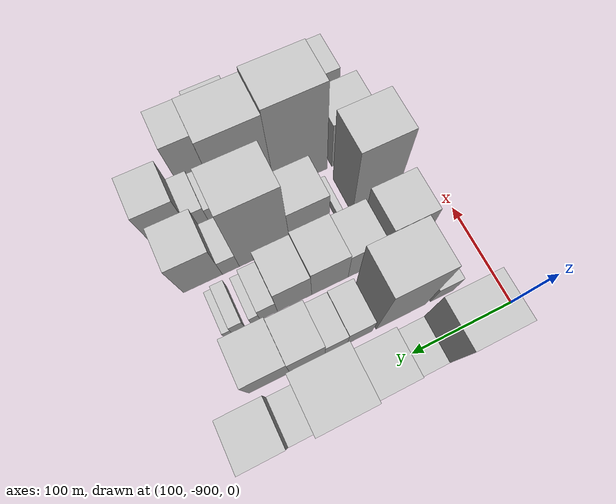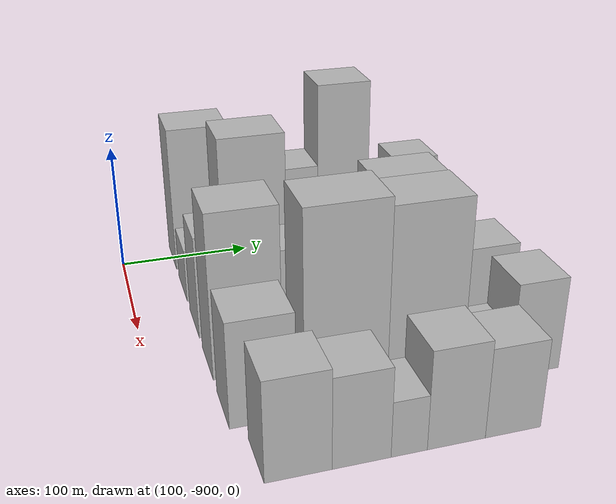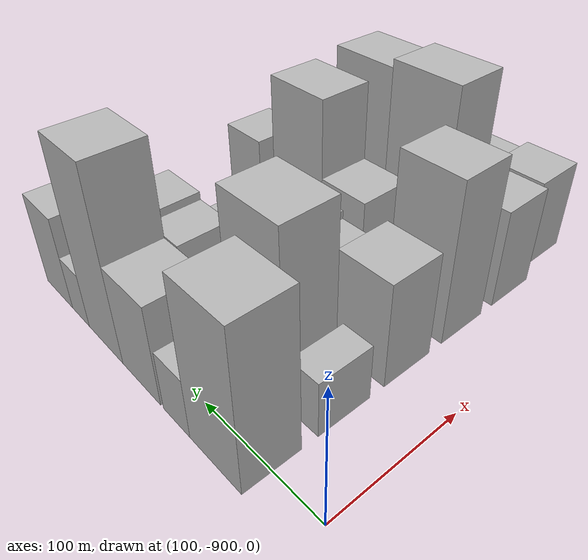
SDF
<sdf version="1.6">
 <world name="default">
  <model name="building_1">
   <static>1</static>
   <pose>100.0000 -836.9546 0 0.000000 0.000000 0.000000</pose>
   <link name="link">
    <pose>0 0 58.50 0 0 0</pose>
    <collision name="collision"><geometry><box><size>40.0000 46.0908 117.0000</size></box></geometry></collision>
    <visual name="visual">
     <cast_shadows>0</cast_shadows>
     <geometry><box><size>40.0000 46.0908 117.0000</size></box></geometry>
     <material>
      <script>
       <uri>model://HANNAS_wall/materials/scripts</uri>
       <uri>model://HANNAS_wall/materials/textures</uri>
       <name>vrc/HANNAS_wall</name>
      </script>
     </material>
    </visual>
   </link>
  </model>
  <model name="building_2">
   <static>1</static>
   <pose>100.0000 -800.7105 0 0.000000 0.000000 0.000000</pose>
   <link name="link">
    <pose>0 0 22.50 0 0 0</pose>
    <collision name="collision"><geometry><box><size>40.0000 26.3974 45.0000</size></box></geometry></collision>
    <visual name="visual">
     <cast_shadows>0</cast_shadows>
     <geometry><box><size>40.0000 26.3974 45.0000</size></box></geometry>
     <material>
      <script>
       <uri>model://HANNAS_wall/materials/scripts</uri>
       <uri>model://HANNAS_wall/materials/textures</uri>
       <name>vrc/HANNAS_wall</name>
      </script>
     </material>
    </visual>
   </link>
  </model>
  <model name="building_3">
   <static>1</static>
   <pose>100.0000 -763.3502 0 0.000000 0.000000 0.000000</pose>
   <link name="link">
    <pose>0 0 37.50 0 0 0</pose>
    <collision name="collision"><geometry><box><size>40.0000 42.3233 75.0000</size></box></geometry></collision>
    <visual name="visual">
     <cast_shadows>0</cast_shadows>
     <geometry><box><size>40.0000 42.3233 75.0000</size></box></geometry>
     <material>
      <script>
       <uri>model://HANNAS_wall/materials/scripts</uri>
       <uri>model://HANNAS_wall/materials/textures</uri>
       <name>vrc/HANNAS_wall</name>
      </script>
     </material>
    </visual>
   </link>
  </model>
  <model name="building_4">
   <static>1</static>
   <pose>100.0000 -720.8452 0 0.000000 0.000000 0.000000</pose>
   <link name="link">
    <pose>0 0 70.50 0 0 0</pose>
    <collision name="collision"><geometry><box><size>40.0000 42.6867 141.0000</size></box></geometry></collision>
    <visual name="visual">
     <cast_shadows>0</cast_shadows>
     <geometry><box><size>40.0000 42.6867 141.0000</size></box></geometry>
     <material>
      <script>
       <uri>model://HANNAS_wall/materials/scripts</uri>
       <uri>model://HANNAS_wall/materials/textures</uri>
       <name>vrc/HANNAS_wall</name>
      </script>
     </material>
    </visual>
   </link>
  </model>
  <model name="building_5">
   <static>1</static>
   <pose>100.0000 -687.9397 0 0.000000 0.000000 0.000000</pose>
   <link name="link">
    <pose>0 0 21.00 0 0 0</pose>
    <collision name="collision"><geometry><box><size>40.0000 23.1242 42.0000</size></box></geometry></collision>
    <visual name="visual">
     <cast_shadows>0</cast_shadows>
     <geometry><box><size>40.0000 23.1242 42.0000</size></box></geometry>
     <material>
      <script>
       <uri>model://HANNAS_wall/materials/scripts</uri>
       <uri>model://HANNAS_wall/materials/textures</uri>
       <name>vrc/HANNAS_wall</name>
      </script>
     </material>
    </visual>
   </link>
  </model>
  <model name="building_6">
   <static>1</static>
   <pose>100.0000 -657.6483 0 0.000000 0.000000 0.000000</pose>
   <link name="link">
    <pose>0 0 36.00 0 0 0</pose>
    <collision name="collision"><geometry><box><size>40.0000 37.4587 72.0000</size></box></geometry></collision>
    <visual name="visual">
     <cast_shadows>0</cast_shadows>
     <geometry><box><size>40.0000 37.4587 72.0000</size></box></geometry>
     <material>
      <script>
       <uri>model://HANNAS_wall/materials/scripts</uri>
       <uri>model://HANNAS_wall/materials/textures</uri>
       <name>vrc/HANNAS_wall</name>
      </script>
     </material>
    </visual>
   </link>
  </model>
  <model name="building_49">
   <static>1</static>
   <pose>152.0000 -848.3407 0 0.000000 0.000000 0.000000</pose>
   <link name="link">
    <pose>0 0 21.00 0 0 0</pose>
    <collision name="collision"><geometry><box><size>40.0000 23.3186 42.0000</size></box></geometry></collision>
    <visual name="visual">
     <cast_shadows>0</cast_shadows>
     <geometry><box><size>40.0000 23.3186 42.0000</size></box></geometry>
     <material>
      <script>
       <uri>model://HANNAS_wall/materials/scripts</uri>
       <uri>model://HANNAS_wall/materials/textures</uri>
       <name>vrc/HANNAS_wall</name>
      </script>
     </material>
    </visual>
   </link>
  </model>
  <model name="building_50">
   <static>1</static>
   <pose>152.0000 -806.9948 0 0.000000 0.000000 0.000000</pose>
   <link name="link">
    <pose>0 0 63.00 0 0 0</pose>
    <collision name="collision"><geometry><box><size>40.0000 49.3733 126.0000</size></box></geometry></collision>
    <visual name="visual">
     <cast_shadows>0</cast_shadows>
     <geometry><box><size>40.0000 49.3733 126.0000</size></box></geometry>
     <material>
      <script>
       <uri>model://HANNAS_wall/materials/scripts</uri>
       <uri>model://HANNAS_wall/materials/textures</uri>
       <name>vrc/HANNAS_wall</name>
      </script>
     </material>
    </visual>
   </link>
  </model>
  <model name="building_51">
   <static>1</static>
   <pose>152.0000 -766.2804 0 0.000000 0.000000 0.000000</pose>
   <link name="link">
    <pose>0 0 22.50 0 0 0</pose>
    <collision name="collision"><geometry><box><size>40.0000 24.0554 45.0000</size></box></geometry></collision>
    <visual name="visual">
     <cast_shadows>0</cast_shadows>
     <geometry><box><size>40.0000 24.0554 45.0000</size></box></geometry>
     <material>
      <script>
       <uri>model://HANNAS_wall/materials/scripts</uri>
       <uri>model://HANNAS_wall/materials/textures</uri>
       <name>vrc/HANNAS_wall</name>
      </script>
     </material>
    </visual>
   </link>
  </model>
  <model name="building_52">
   <static>1</static>
   <pose>152.0000 -743.5735 0 0.000000 0.000000 0.000000</pose>
   <link name="link">
    <pose>0 0 21.00 0 0 0</pose>
    <collision name="collision"><geometry><box><size>40.0000 21.3583 42.0000</size></box></geometry></collision>
    <visual name="visual">
     <cast_shadows>0</cast_shadows>
     <geometry><box><size>40.0000 21.3583 42.0000</size></box></geometry>
     <material>
      <script>
       <uri>model://HANNAS_wall/materials/scripts</uri>
       <uri>model://HANNAS_wall/materials/textures</uri>
       <name>vrc/HANNAS_wall</name>
      </script>
     </material>
    </visual>
   </link>
  </model>
  <model name="building_53">
   <static>1</static>
   <pose>152.0000 -716.4333 0 0.000000 0.000000 0.000000</pose>
   <link name="link">
    <pose>0 0 28.50 0 0 0</pose>
    <collision name="collision"><geometry><box><size>40.0000 32.9222 57.0000</size></box></geometry></collision>
    <visual name="visual">
     <cast_shadows>0</cast_shadows>
     <geometry><box><size>40.0000 32.9222 57.0000</size></box></geometry>
     <material>
      <script>
       <uri>model://HANNAS_wall/materials/scripts</uri>
       <uri>model://HANNAS_wall/materials/textures</uri>
       <name>vrc/HANNAS_wall</name>
      </script>
     </material>
    </visual>
   </link>
  </model>
  <model name="building_54">
   <static>1</static>
   <pose>152.0000 -681.1485 0 0.000000 0.000000 0.000000</pose>
   <link name="link">
    <pose>0 0 31.50 0 0 0</pose>
    <collision name="collision"><geometry><box><size>40.0000 37.6475 63.0000</size></box></geometry></collision>
    <visual name="visual">
     <cast_shadows>0</cast_shadows>
     <geometry><box><size>40.0000 37.6475 63.0000</size></box></geometry>
     <material>
      <script>
       <uri>model://HANNAS_wall/materials/scripts</uri>
       <uri>model://HANNAS_wall/materials/textures</uri>
       <name>vrc/HANNAS_wall</name>
      </script>
     </material>
    </visual>
   </link>
  </model>
  <model name="building_94">
   <static>1</static>
   <pose>204.0000 -839.3285 0 0.000000 0.000000 0.000000</pose>
   <link name="link">
    <pose>0 0 39.00 0 0 0</pose>
    <collision name="collision"><geometry><box><size>40.0000 41.3431 78.0000</size></box></geometry></collision>
    <visual name="visual">
     <cast_shadows>0</cast_shadows>
     <geometry><box><size>40.0000 41.3431 78.0000</size></box></geometry>
     <material>
      <script>
       <uri>model://HANNAS_wall/materials/scripts</uri>
       <uri>model://HANNAS_wall/materials/textures</uri>
       <name>vrc/HANNAS_wall</name>
      </script>
     </material>
    </visual>
   </link>
  </model>
  <model name="building_95">
   <static>1</static>
   <pose>204.0000 -798.7464 0 0.000000 0.000000 0.000000</pose>
   <link name="link">
    <pose>0 0 30.00 0 0 0</pose>
    <collision name="collision"><geometry><box><size>40.0000 33.8210 60.0000</size></box></geometry></collision>
    <visual name="visual">
     <cast_shadows>0</cast_shadows>
     <geometry><box><size>40.0000 33.8210 60.0000</size></box></geometry>
     <material>
      <script>
       <uri>model://HANNAS_wall/materials/scripts</uri>
       <uri>model://HANNAS_wall/materials/textures</uri>
       <name>vrc/HANNAS_wall</name>
      </script>
     </material>
    </visual>
   </link>
  </model>
  <model name="building_96">
   <static>1</static>
   <pose>204.0000 -763.7818 0 0.000000 0.000000 0.000000</pose>
   <link name="link">
    <pose>0 0 33.00 0 0 0</pose>
    <collision name="collision"><geometry><box><size>40.0000 36.1082 66.0000</size></box></geometry></collision>
    <visual name="visual">
     <cast_shadows>0</cast_shadows>
     <geometry><box><size>40.0000 36.1082 66.0000</size></box></geometry>
     <material>
      <script>
       <uri>model://HANNAS_wall/materials/scripts</uri>
       <uri>model://HANNAS_wall/materials/textures</uri>
       <name>vrc/HANNAS_wall</name>
      </script>
     </material>
    </visual>
   </link>
  </model>
  <model name="building_97">
   <static>1</static>
   <pose>204.0000 -729.1029 0 0.000000 0.000000 0.000000</pose>
   <link name="link">
    <pose>0 0 30.00 0 0 0</pose>
    <collision name="collision"><geometry><box><size>40.0000 33.2497 60.0000</size></box></geometry></collision>
    <visual name="visual">
     <cast_shadows>0</cast_shadows>
     <geometry><box><size>40.0000 33.2497 60.0000</size></box></geometry>
     <material>
      <script>
       <uri>model://HANNAS_wall/materials/scripts</uri>
       <uri>model://HANNAS_wall/materials/textures</uri>
       <name>vrc/HANNAS_wall</name>
      </script>
     </material>
    </visual>
   </link>
  </model>
  <model name="building_98">
   <static>1</static>
   <pose>204.0000 -704.1733 0 0.000000 0.000000 0.000000</pose>
   <link name="link">
    <pose>0 0 16.50 0 0 0</pose>
    <collision name="collision"><geometry><box><size>40.0000 16.6094 33.0000</size></box></geometry></collision>
    <visual name="visual">
     <cast_shadows>0</cast_shadows>
     <geometry><box><size>40.0000 16.6094 33.0000</size></box></geometry>
     <material>
      <script>
       <uri>model://HANNAS_wall/materials/scripts</uri>
       <uri>model://HANNAS_wall/materials/textures</uri>
       <name>vrc/HANNAS_wall</name>
      </script>
     </material>
    </visual>
   </link>
  </model>
  <model name="building_99">
   <static>1</static>
   <pose>204.0000 -691.5956 0 0.000000 0.000000 0.000000</pose>
   <link name="link">
    <pose>0 0 10.50 0 0 0</pose>
    <collision name="collision"><geometry><box><size>40.0000 8.5460 21.0000</size></box></geometry></collision>
    <visual name="visual">
     <cast_shadows>0</cast_shadows>
     <geometry><box><size>40.0000 8.5460 21.0000</size></box></geometry>
     <material>
      <script>
       <uri>model://HANNAS_wall/materials/scripts</uri>
       <uri>model://HANNAS_wall/materials/textures</uri>
       <name>vrc/HANNAS_wall</name>
      </script>
     </material>
    </visual>
   </link>
  </model>
  <model name="building_100">
   <static>1</static>
   <pose>204.0000 -675.3369 0 0.000000 0.000000 0.000000</pose>
   <link name="link">
    <pose>0 0 12.00 0 0 0</pose>
    <collision name="collision"><geometry><box><size>40.0000 11.9713 24.0000</size></box></geometry></collision>
    <visual name="visual">
     <cast_shadows>0</cast_shadows>
     <geometry><box><size>40.0000 11.9713 24.0000</size></box></geometry>
     <material>
      <script>
       <uri>model://HANNAS_wall/materials/scripts</uri>
       <uri>model://HANNAS_wall/materials/textures</uri>
       <name>vrc/HANNAS_wall</name>
      </script>
     </material>
    </visual>
   </link>
  </model>
  <model name="building_101">
   <static>1</static>
   <pose>204.0000 -665.6635 0 0.000000 0.000000 0.000000</pose>
   <link name="link">
    <pose>0 0 7.50 0 0 0</pose>
    <collision name="collision"><geometry><box><size>40.0000 7.3756 15.0000</size></box></geometry></collision>
    <visual name="visual">
     <cast_shadows>0</cast_shadows>
     <geometry><box><size>40.0000 7.3756 15.0000</size></box></geometry>
     <material>
      <script>
       <uri>model://HANNAS_wall/materials/scripts</uri>
       <uri>model://HANNAS_wall/materials/textures</uri>
       <name>vrc/HANNAS_wall</name>
      </script>
     </material>
    </visual>
   </link>
  </model>
  <model name="building_142">
   <static>1</static>
   <pose>256.0000 -836.6003 0 0.000000 0.000000 0.000000</pose>
   <link name="link">
    <pose>0 0 60.00 0 0 0</pose>
    <collision name="collision"><geometry><box><size>40.0000 46.7994 120.0000</size></box></geometry></collision>
    <visual name="visual">
     <cast_shadows>0</cast_shadows>
     <geometry><box><size>40.0000 46.7994 120.0000</size></box></geometry>
     <material>
      <script>
       <uri>model://HANNAS_wall/materials/scripts</uri>
       <uri>model://HANNAS_wall/materials/textures</uri>
       <name>vrc/HANNAS_wall</name>
      </script>
     </material>
    </visual>
   </link>
  </model>
  <model name="building_143">
   <static>1</static>
   <pose>256.0000 -800.9864 0 0.000000 0.000000 0.000000</pose>
   <link name="link">
    <pose>0 0 7.50 0 0 0</pose>
    <collision name="collision"><geometry><box><size>40.0000 6.4284 15.0000</size></box></geometry></collision>
    <visual name="visual">
     <cast_shadows>0</cast_shadows>
     <geometry><box><size>40.0000 6.4284 15.0000</size></box></geometry>
     <material>
      <script>
       <uri>model://HANNAS_wall/materials/scripts</uri>
       <uri>model://HANNAS_wall/materials/textures</uri>
       <name>vrc/HANNAS_wall</name>
      </script>
     </material>
    </visual>
   </link>
  </model>
  <model name="building_144">
   <static>1</static>
   <pose>256.0000 -769.0156 0 0.000000 0.000000 0.000000</pose>
   <link name="link">
    <pose>0 0 34.50 0 0 0</pose>
    <collision name="collision"><geometry><box><size>40.0000 39.5131 69.0000</size></box></geometry></collision>
    <visual name="visual">
     <cast_shadows>0</cast_shadows>
     <geometry><box><size>40.0000 39.5131 69.0000</size></box></geometry>
     <material>
      <script>
       <uri>model://HANNAS_wall/materials/scripts</uri>
       <uri>model://HANNAS_wall/materials/textures</uri>
       <name>vrc/HANNAS_wall</name>
      </script>
     </material>
    </visual>
   </link>
  </model>
  <model name="building_145">
   <static>1</static>
   <pose>256.0000 -724.0854 0 0.000000 0.000000 0.000000</pose>
   <link name="link">
    <pose>0 0 63.00 0 0 0</pose>
    <collision name="collision"><geometry><box><size>40.0000 50.3472 126.0000</size></box></geometry></collision>
    <visual name="visual">
     <cast_shadows>0</cast_shadows>
     <geometry><box><size>40.0000 50.3472 126.0000</size></box></geometry>
     <material>
      <script>
       <uri>model://HANNAS_wall/materials/scripts</uri>
       <uri>model://HANNAS_wall/materials/textures</uri>
       <name>vrc/HANNAS_wall</name>
      </script>
     </material>
    </visual>
   </link>
  </model>
  <model name="building_146">
   <static>1</static>
   <pose>256.0000 -690.6358 0 0.000000 0.000000 0.000000</pose>
   <link name="link">
    <pose>0 0 16.50 0 0 0</pose>
    <collision name="collision"><geometry><box><size>40.0000 16.5521 33.0000</size></box></geometry></collision>
    <visual name="visual">
     <cast_shadows>0</cast_shadows>
     <geometry><box><size>40.0000 16.5521 33.0000</size></box></geometry>
     <material>
      <script>
       <uri>model://HANNAS_wall/materials/scripts</uri>
       <uri>model://HANNAS_wall/materials/textures</uri>
       <name>vrc/HANNAS_wall</name>
      </script>
     </material>
    </visual>
   </link>
  </model>
  <model name="building_147">
   <static>1</static>
   <pose>256.0000 -663.6301 0 0.000000 0.000000 0.000000</pose>
   <link name="link">
    <pose>0 0 34.50 0 0 0</pose>
    <collision name="collision"><geometry><box><size>40.0000 37.4593 69.0000</size></box></geometry></collision>
    <visual name="visual">
     <cast_shadows>0</cast_shadows>
     <geometry><box><size>40.0000 37.4593 69.0000</size></box></geometry>
     <material>
      <script>
       <uri>model://HANNAS_wall/materials/scripts</uri>
       <uri>model://HANNAS_wall/materials/textures</uri>
       <name>vrc/HANNAS_wall</name>
      </script>
     </material>
    </visual>
   </link>
  </model>
  <model name="building_194">
   <static>1</static>
   <pose>308.0000 -838.9709 0 0.000000 0.000000 0.000000</pose>
   <link name="link">
    <pose>0 0 37.50 0 0 0</pose>
    <collision name="collision"><geometry><box><size>40.0000 42.0582 75.0000</size></box></geometry></collision>
    <visual name="visual">
     <cast_shadows>0</cast_shadows>
     <geometry><box><size>40.0000 42.0582 75.0000</size></box></geometry>
     <material>
      <script>
       <uri>model://HANNAS_wall/materials/scripts</uri>
       <uri>model://HANNAS_wall/materials/textures</uri>
       <name>vrc/HANNAS_wall</name>
      </script>
     </material>
    </visual>
   </link>
  </model>
  <model name="building_195">
   <static>1</static>
   <pose>308.0000 -785.8591 0 0.000000 0.000000 0.000000</pose>
   <link name="link">
    <pose>0 0 70.50 0 0 0</pose>
    <collision name="collision"><geometry><box><size>40.0000 54.1654 141.0000</size></box></geometry></collision>
    <visual name="visual">
     <cast_shadows>0</cast_shadows>
     <geometry><box><size>40.0000 54.1654 141.0000</size></box></geometry>
     <material>
      <script>
       <uri>model://HANNAS_wall/materials/scripts</uri>
       <uri>model://HANNAS_wall/materials/textures</uri>
       <name>vrc/HANNAS_wall</name>
      </script>
     </material>
    </visual>
   </link>
  </model>
  <model name="building_196">
   <static>1</static>
   <pose>308.0000 -733.1106 0 0.000000 0.000000 0.000000</pose>
   <link name="link">
    <pose>0 0 67.50 0 0 0</pose>
    <collision name="collision"><geometry><box><size>40.0000 51.3316 135.0000</size></box></geometry></collision>
    <visual name="visual">
     <cast_shadows>0</cast_shadows>
     <geometry><box><size>40.0000 51.3316 135.0000</size></box></geometry>
     <material>
      <script>
       <uri>model://HANNAS_wall/materials/scripts</uri>
       <uri>model://HANNAS_wall/materials/textures</uri>
       <name>vrc/HANNAS_wall</name>
      </script>
     </material>
    </visual>
   </link>
  </model>
  <model name="building_197">
   <static>1</static>
   <pose>308.0000 -697.1808 0 0.000000 0.000000 0.000000</pose>
   <link name="link">
    <pose>0 0 13.50 0 0 0</pose>
    <collision name="collision"><geometry><box><size>40.0000 12.5280 27.0000</size></box></geometry></collision>
    <visual name="visual">
     <cast_shadows>0</cast_shadows>
     <geometry><box><size>40.0000 12.5280 27.0000</size></box></geometry>
     <material>
      <script>
       <uri>model://HANNAS_wall/materials/scripts</uri>
       <uri>model://HANNAS_wall/materials/textures</uri>
       <name>vrc/HANNAS_wall</name>
      </script>
     </material>
    </visual>
   </link>
  </model>
  <model name="building_198">
   <static>1</static>
   <pose>308.0000 -681.6894 0 0.000000 0.000000 0.000000</pose>
   <link name="link">
    <pose>0 0 16.50 0 0 0</pose>
    <collision name="collision"><geometry><box><size>40.0000 18.4548 33.0000</size></box></geometry></collision>
    <visual name="visual">
     <cast_shadows>0</cast_shadows>
     <geometry><box><size>40.0000 18.4548 33.0000</size></box></geometry>
     <material>
      <script>
       <uri>model://HANNAS_wall/materials/scripts</uri>
       <uri>model://HANNAS_wall/materials/textures</uri>
       <name>vrc/HANNAS_wall</name>
      </script>
     </material>
    </visual>
   </link>
  </model>
  <model name="building_199">
   <static>1</static>
   <pose>308.0000 -654.8012 0 0.000000 0.000000 0.000000</pose>
   <link name="link">
    <pose>0 0 34.50 0 0 0</pose>
    <collision name="collision"><geometry><box><size>40.0000 35.3216 69.0000</size></box></geometry></collision>
    <visual name="visual">
     <cast_shadows>0</cast_shadows>
     <geometry><box><size>40.0000 35.3216 69.0000</size></box></geometry>
     <material>
      <script>
       <uri>model://HANNAS_wall/materials/scripts</uri>
       <uri>model://HANNAS_wall/materials/textures</uri>
       <name>vrc/HANNAS_wall</name>
      </script>
     </material>
    </visual>
   </link>
  </model>
  <model name="building_243">
   <static>1</static>
   <pose>360.0000 -831.1436 0 0.000000 0.000000 0.000000</pose>
   <link name="link">
    <pose>0 0 34.50 0 0 0</pose>
    <collision name="collision"><geometry><box><size>40.0000 39.7128 69.0000</size></box></geometry></collision>
    <visual name="visual">
     <cast_shadows>0</cast_shadows>
     <geometry><box><size>40.0000 39.7128 69.0000</size></box></geometry>
     <material>
      <script>
       <uri>model://HANNAS_wall/materials/scripts</uri>
       <uri>model://HANNAS_wall/materials/textures</uri>
       <name>vrc/HANNAS_wall</name>
      </script>
     </material>
    </visual>
   </link>
  </model>
  <model name="building_244">
   <static>1</static>
   <pose>360.0000 -793.4251 0 0.000000 0.000000 0.000000</pose>
   <link name="link">
    <pose>0 0 31.50 0 0 0</pose>
    <collision name="collision"><geometry><box><size>40.0000 35.7241 63.0000</size></box></geometry></collision>
    <visual name="visual">
     <cast_shadows>0</cast_shadows>
     <geometry><box><size>40.0000 35.7241 63.0000</size></box></geometry>
     <material>
      <script>
       <uri>model://HANNAS_wall/materials/scripts</uri>
       <uri>model://HANNAS_wall/materials/textures</uri>
       <name>vrc/HANNAS_wall</name>
      </script>
     </material>
    </visual>
   </link>
  </model>
  <model name="building_245">
   <static>1</static>
   <pose>360.0000 -764.2604 0 0.000000 0.000000 0.000000</pose>
   <link name="link">
    <pose>0 0 19.50 0 0 0</pose>
    <collision name="collision"><geometry><box><size>40.0000 22.6053 39.0000</size></box></geometry></collision>
    <visual name="visual">
     <cast_shadows>0</cast_shadows>
     <geometry><box><size>40.0000 22.6053 39.0000</size></box></geometry>
     <material>
      <script>
       <uri>model://HANNAS_wall/materials/scripts</uri>
       <uri>model://HANNAS_wall/materials/textures</uri>
       <name>vrc/HANNAS_wall</name>
      </script>
     </material>
    </visual>
   </link>
  </model>
  <model name="building_246">
   <static>1</static>
   <pose>360.0000 -734.3496 0 0.000000 0.000000 0.000000</pose>
   <link name="link">
    <pose>0 0 34.50 0 0 0</pose>
    <collision name="collision"><geometry><box><size>40.0000 37.2163 69.0000</size></box></geometry></collision>
    <visual name="visual">
     <cast_shadows>0</cast_shadows>
     <geometry><box><size>40.0000 37.2163 69.0000</size></box></geometry>
     <material>
      <script>
       <uri>model://HANNAS_wall/materials/scripts</uri>
       <uri>model://HANNAS_wall/materials/textures</uri>
       <name>vrc/HANNAS_wall</name>
      </script>
     </material>
    </visual>
   </link>
  </model>
  <model name="building_247">
   <static>1</static>
   <pose>360.0000 -697.4027 0 0.000000 0.000000 0.000000</pose>
   <link name="link">
    <pose>0 0 31.50 0 0 0</pose>
    <collision name="collision"><geometry><box><size>40.0000 36.6773 63.0000</size></box></geometry></collision>
    <visual name="visual">
     <cast_shadows>0</cast_shadows>
     <geometry><box><size>40.0000 36.6773 63.0000</size></box></geometry>
     <material>
      <script>
       <uri>model://HANNAS_wall/materials/scripts</uri>
       <uri>model://HANNAS_wall/materials/textures</uri>
       <name>vrc/HANNAS_wall</name>
      </script>
     </material>
    </visual>
   </link>
  </model>
 </world>
</sdf>
